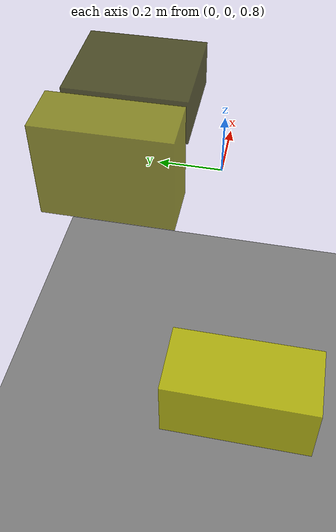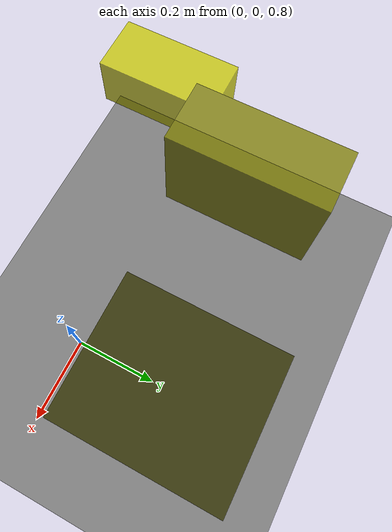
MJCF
<?xml version="1.0"?>
<mujoco model="obstacle_scene">
  <compiler angle="radian" coordinate="local"/>
  <option timestep="0.001" gravity="0 0 -9.81"/>

  <asset>
    <material name="obstacle_mat" rgba="0.8 0.8 0.0 0.8"/>
    <material name="ground_mat" rgba="0.5 0.5 0.5 1"/>
  </asset>

  <worldbody>
    <!-- Ground plane -->
    <geom name="ground" type="plane" size="3 3 0.1" material="ground_mat"/>

    <!-- Obstacles -->
    <body name="obstacle_0" pos="0.021352 0.265024 1.067483">
      <geom name="obs_0" type="box" size="0.154311 0.179350 0.070975" rgba="0.2 0.2 0.0 0.8"/>
    </body>
    <body name="obstacle_1" pos="-0.428413 0.219973 1.157561">
      <geom name="obs_1" type="box" size="0.068569 0.168448 0.133326" rgba="0.5 0.5 0.0 0.8"/>
    </body>
    <body name="obstacle_2" pos="-0.772575 -0.159606 0.815261">
      <geom name="obs_2" type="box" size="0.083725 0.176857 0.086862" rgba="0.8 0.8 0.0 0.8"/>
    </body>
  </worldbody>
</mujoco>
